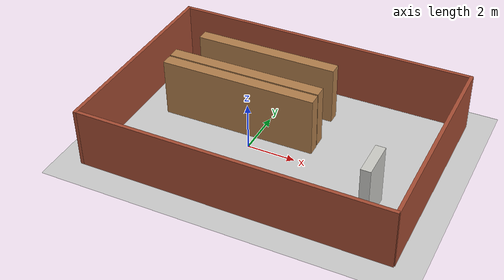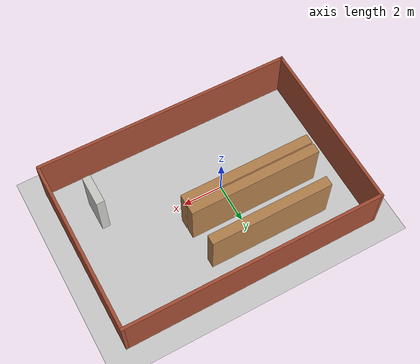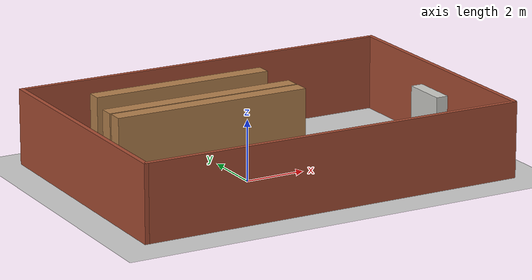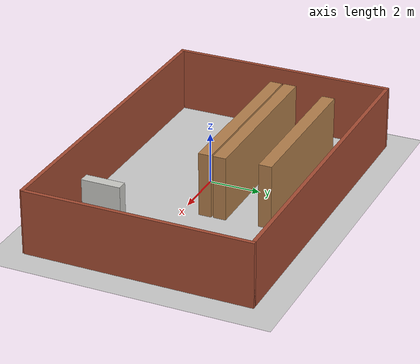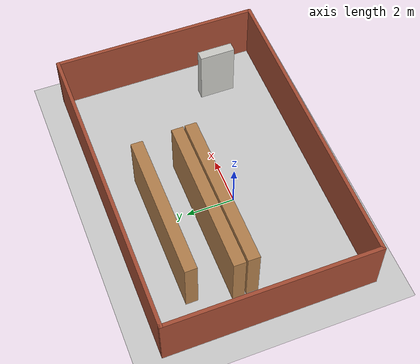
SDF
<sdf version="1.6">
 <world name="default">
  <light name="sun" type="directional">
   <pose>0 0 10 0 -0 0</pose>
   <diffuse>0.8 0.8 0.8 1</diffuse>
   <specular>0.2 0.2 0.2 1</specular>
   <attenuation>
    <range>1000</range>
    <constant>0.9</constant>
    <linear>0.01</linear>
    <quadratic>0.001</quadratic>
   </attenuation>
   <direction>-0.5 0.1 -0.9</direction>
  </light>
  <model name="ground_plane">
   <static>1</static>
   <link name="link">
    <collision name="collision">
     <geometry><plane><normal>0 0 1</normal><size>100 100</size></plane></geometry>
     <surface>
      <contact><collide_bitmask>65535</collide_bitmask></contact>
      <friction><ode><mu>100</mu><mu2>50</mu2></ode></friction>
     </surface>
    </collision>
    <visual name="visual">
     <cast_shadows>0</cast_shadows>
     <geometry><plane><normal>0 0 1</normal><size>100 100</size></plane></geometry>
     <material>
      <script><uri>file://media/materials/scripts/gazebo.material</uri><name>Gazebo/Grey</name></script>
     </material>
    </visual>
   </link>
  </model>
  <gravity>0 0 -9.8</gravity>
  <magnetic_field>6e-06 2.3e-05 -4.2e-05</magnetic_field>
  <atmosphere type="adiabatic"/>
  <physics name="default_physics" default="0" type="ode">
   <max_step_size>0.001</max_step_size>
   <real_time_factor>1</real_time_factor>
   <real_time_update_rate>1000</real_time_update_rate>
  </physics>
  <scene><ambient>0.4 0.4 0.4 1</ambient><background>0.7 0.7 0.7 1</background><shadows>1</shadows></scene>
  <audio><device>default</device></audio>
  <spherical_coordinates>
   <surface_model>EARTH_WGS84</surface_model>
   <latitude_deg>0</latitude_deg>
   <longitude_deg>0</longitude_deg>
   <elevation>0</elevation>
   <heading_deg>0</heading_deg>
  </spherical_coordinates>
  <model name="Simplified_layout">
   <pose>1.02805 0.610182 0 0 -0 0</pose>
   <link name="Wall_0">
    <collision name="Wall_0_Collision">
     <geometry><box><size>8.75 0.15 2.5</size></box></geometry>
     <pose>0 0 1.25 0 -0 0</pose>
    </collision>
    <visual name="Wall_0_Visual">
     <pose>0 0 1.25 0 -0 0</pose>
     <geometry><box><size>8.75 0.15 2.5</size></box></geometry>
     <material>
      <script><uri>file://media/materials/scripts/gazebo.material</uri><name>Gazebo/Bricks</name></script>
      <ambient>1 1 1 1</ambient>
     </material>
     <meta><layer>0</layer></meta>
    </visual>
    <pose>-6.425 0.032072 0 0 -0 1.5708</pose>
   </link>
   <link name="Wall_10">
    <collision name="Wall_10_Collision">
     <geometry><box><size>6.6 0.5 2.5</size></box></geometry>
     <pose>0 0 1.25 0 -0 0</pose>
    </collision>
    <visual name="Wall_10_Visual">
     <pose>0 0 1.25 0 -0 0</pose>
     <geometry><box><size>6.6 0.5 2.5</size></box></geometry>
     <material>
      <script><uri>file://media/materials/scripts/gazebo.material</uri><name>Gazebo/Wood</name></script>
      <ambient>1 1 1 1</ambient>
     </material>
     <meta><layer>0</layer></meta>
    </visual>
    <pose>-1.88127 0.854975 0 0 -0 0</pose>
   </link>
   <link name="Wall_12">
    <collision name="Wall_12_Collision">
     <geometry><box><size>6.6 0.5 2.5</size></box></geometry>
     <pose>0 0 1.25 0 -0 0</pose>
    </collision>
    <visual name="Wall_12_Visual">
     <pose>0 0 1.25 0 -0 0</pose>
     <geometry><box><size>6.6 0.5 2.5</size></box></geometry>
     <material>
      <script><uri>file://media/materials/scripts/gazebo.material</uri><name>Gazebo/Wood</name></script>
      <ambient>1 1 1 1</ambient>
     </material>
     <meta><layer>0</layer></meta>
    </visual>
    <pose>-1.86695 0.288949 0 0 -0 0</pose>
   </link>
   <link name="Wall_14">
    <collision name="Wall_14_Collision">
     <geometry><box><size>1.50022 0.4 2.5</size></box></geometry>
     <pose>0 0 1.25 0 -0 0</pose>
    </collision>
    <visual name="Wall_14_Visual">
     <pose>0 0 1.25 0 -0 0</pose>
     <geometry><box><size>1.50022 0.4 2.5</size></box></geometry>
     <material>
      <script><uri>file://media/materials/scripts/gazebo.material</uri><name>Gazebo/CeilingTiled</name></script>
      <ambient>1 1 1 1</ambient>
     </material>
     <meta><layer>0</layer></meta>
    </visual>
    <pose>4.70295 -2.09318 0 0 -0 -1.5708</pose>
   </link>
   <link name="Wall_3">
    <collision name="Wall_3_Collision">
     <geometry><box><size>12.9068 0.15 2.5</size></box></geometry>
     <pose>0 0 1.25 0 -0 0</pose>
    </collision>
    <visual name="Wall_3_Visual">
     <pose>0 0 1.25 0 -0 0</pose>
     <geometry><box><size>12.9068 0.15 2.5</size></box></geometry>
     <material>
      <script><uri>file://media/materials/scripts/gazebo.material</uri><name>Gazebo/Bricks</name></script>
      <ambient>1 1 1 1</ambient>
     </material>
     <meta><layer>0</layer></meta>
    </visual>
    <pose>0.017089 -4.29981 0 0 -0 3.13659</pose>
   </link>
   <link name="Wall_5">
    <collision name="Wall_5_Collision">
     <geometry><box><size>13 0.15 2.5</size></box></geometry>
     <pose>0 0 1.25 0 -0 0</pose>
    </collision>
    <visual name="Wall_5_Visual">
     <pose>0 0 1.25 0 -0 0</pose>
     <geometry><box><size>13 0.15 2.5</size></box></geometry>
     <material>
      <script><uri>file://media/materials/scripts/gazebo.material</uri><name>Gazebo/Bricks</name></script>
      <ambient>1 1 1 1</ambient>
     </material>
     <meta><layer>0</layer></meta>
    </visual>
    <pose>0 4.33207 0 0 -0 0</pose>
   </link>
   <link name="Wall_6">
    <collision name="Wall_6_Collision">
     <geometry><box><size>8.75 0.15 2.5</size></box></geometry>
     <pose>0 0 1.25 0 -0 0</pose>
    </collision>
    <visual name="Wall_6_Visual">
     <pose>0 0 1.25 0 -0 0</pose>
     <geometry><box><size>8.75 0.15 2.5</size></box></geometry>
     <material>
      <script><uri>file://media/materials/scripts/gazebo.material</uri><name>Gazebo/Bricks</name></script>
      <ambient>1 1 1 1</ambient>
     </material>
     <meta><layer>0</layer></meta>
    </visual>
    <pose>6.425 0.032072 0 0 -0 -1.5708</pose>
   </link>
   <link name="Wall_8">
    <collision name="Wall_8_Collision">
     <geometry><box><size>6.1 0.5 2.5</size></box></geometry>
     <pose>0 0 1.25 0 -0 0</pose>
    </collision>
    <visual name="Wall_8_Visual">
     <pose>0 0 1.25 0 -0 0</pose>
     <geometry><box><size>6.1 0.5 2.5</size></box></geometry>
     <material>
      <script><uri>file://media/materials/scripts/gazebo.material</uri><name>Gazebo/Wood</name></script>
      <ambient>1 1 1 1</ambient>
     </material>
     <meta><layer>0</layer></meta>
    </visual>
    <pose>-1.71939 2.58594 0 0 -0 0</pose>
   </link>
   <static>1</static>
  </model>
 </world>
</sdf>
